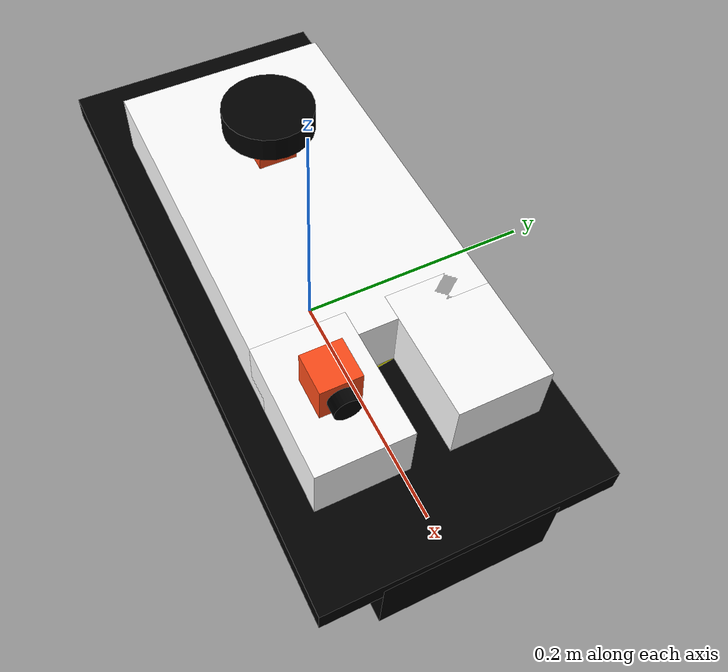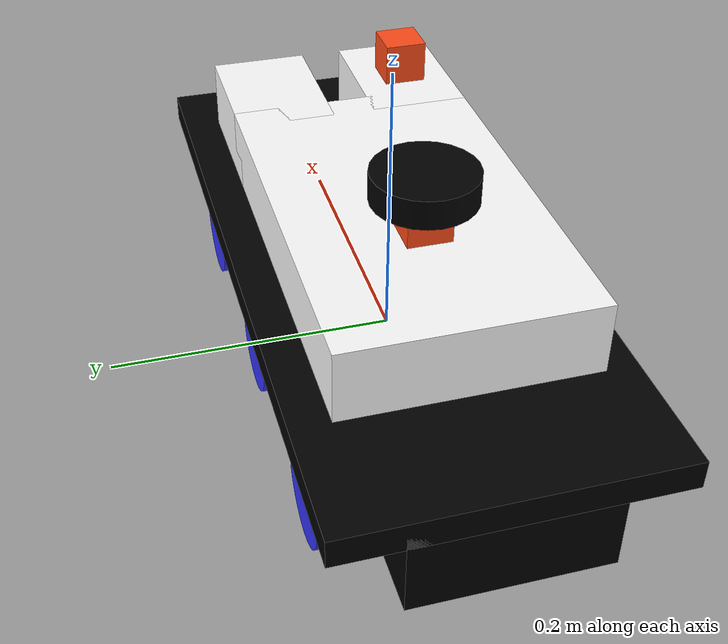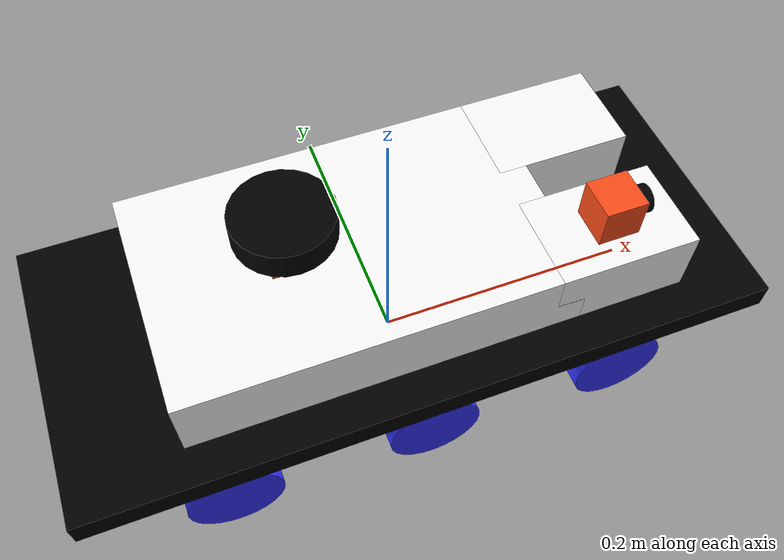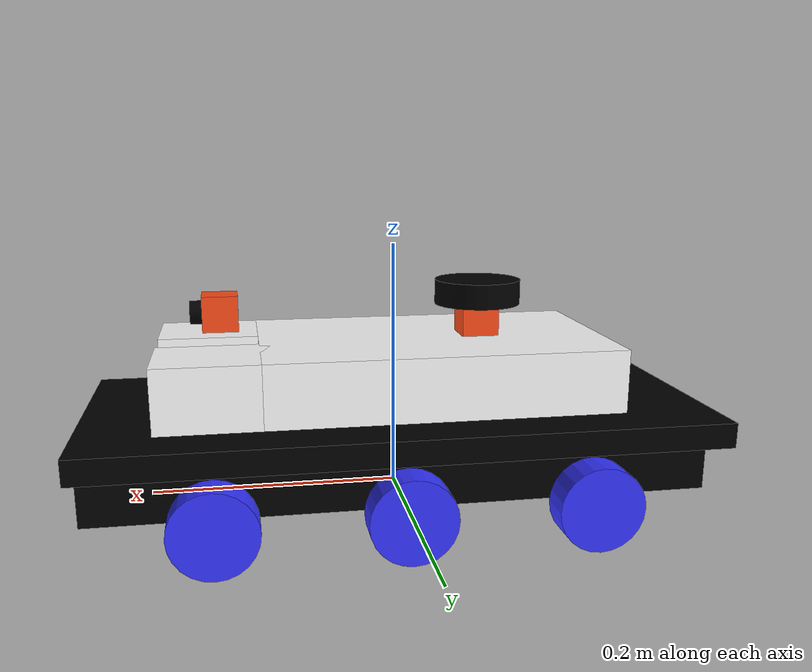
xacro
<?xml version="1.0"?>
<robot xmlns:xacro="http://www.ros.org/wiki/xacro"  name="pulsepusher">

    <xacro:include filename="pulsepusher.xacro" />

    <xacro:include filename="turret.xacro"/>
    <xacro:include filename="camera.xacro" />

    <xacro:include filename="gazebo_control.xacro"/>

    <xacro:include filename="lidar.xacro" />

</robot>

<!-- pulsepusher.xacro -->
<robot xmlns:xacro="http://www.ros.org/wiki/xacro">

    <xacro:include filename="inertial_macros.xacro" />
    <xacro:include filename="pulse_gazebo.xacro" />

    <!-- Farben -->

    <material name="white">
        <color rgba="1 1 1 1" />
    </material>

    <material name="black">
        <color rgba="0 0 0 1" />
    </material>

    <material name="red">
        <color rgba="1 0 0 1" />
    </material>

    <material name="blue">
        <color rgba="0.2 0.2 1 1" />
    </material>

    <material name="yellow">
        <color rgba="1 1 0 1" />
    </material>

    <material name="orange">
        <color rgba="1 0.3 0.1 1" />
    </material>

    <material name="green">
        <color rgba="0.0 1.0 0.0 1.0" />
    </material>

    <!-- BASE LINK -->

    <link name="base_link">

    </link>
    <!-- CHASSIS LINK -->
    <joint name="cassis_joint" type="fixed">
        <parent link="base_link" />
        <child link="chassis" />
        <origin xyz="-0.25 0.0 0.0" />
    </joint>

    <link name="chassis">
        <visual>
            <origin xyz="0.25 0.0 0.03" />
            <geometry>
                <box size="0.5 0.13 0.06" />
            </geometry>
            <material name="black" />
        </visual>
        <collision>
            <origin xyz="0.25 0.0 0.03" />
            <geometry>
                <box size="0.5 0.13 0.06" />
            </geometry>
        </collision>
        <xacro:inertial_box mass="0.3" x="0.5" y="0.13" z="0.06">
            <origion xyz="0.0 0.0 0.0" rpy="0.0 0.0 0.0" />
        </xacro:inertial_box>
    </link>

    <gazebo reference="chassis">
        <material>Gazebo/Black</material>
    </gazebo>

    <joint name="cassis_top_joint" type="fixed">
        <parent link="chassis" />
        <child link="chassis_top" />
        <origin xyz="0.0 0.0 0.0" />
    </joint>

    <link name="chassis_top">
        <visual>
            <origin xyz="0.25 0 0.06" />
            <geometry>
                <box size="0.5 0.22 0.02" />
            </geometry>
            <material name="black" />
        </visual>
        <collision>
            <origin xyz="0.25 0 0.06" />
            <geometry>
                <box size="0.5 0.22 0.02" />
            </geometry>
        </collision>
        <xacro:inertial_box mass="0.1" x="0.5" y="0.22" z="0.02">
            <origion xyz="0.0 0.0 0.0" rpy="0.0 0.0 0.0" />
        </xacro:inertial_box>
    </link>

    <gazebo reference="chassis_top">
        <material>Gazebo/Black</material>
    </gazebo>

    <!-- LEFT WHEEL LINK  Section-->

    <joint name="left_wheel_joint" type="continuous">
        <origin xyz="0.0 0.085 0.0" rpy="-${pi/2} 0.0 0.0" />
        <parent link="base_link" />
        <child link="left_wheel" />
        <axis xyz="0.0 0.0 1.0" />
        <limit lower="0.0" upper="0.0" effort="0.0" velocity="0.0" />
    </joint>

    <link name="left_wheel">
        <visual>
            <geometry>
                <cylinder radius="0.035" length="0.028" />
            </geometry>
            <material name="blue" />
        </visual>
        <collision>
            <geometry>
                <sphere radius="0.035" />
            </geometry>
        </collision>
        <xacro:inertial_cylinder mass="0.1" length="0.028" radius="0.035">
            <origin xyz="0.0 0.0 0.0" rpy="0.0 0.0 0.0" />
        </xacro:inertial_cylinder>
    </link>

    <joint name="left_wheel_joint_f" type="fixed">
        <origin xyz="0.15 0.085 0.0" rpy="-${pi/2} 0.0 0.0" />
        <parent link="base_link" />
        <child link="left_wheel_f" />
    </joint>

    <link name="left_wheel_f">
        <visual>
            <geometry>
                <cylinder radius="0.035" length="0.028" />
            </geometry>
            <material name="blue" />
        </visual>
        <collision>
            <geometry>
                <sphere radius="0.035" />
            </geometry>
        </collision>
        <xacro:inertial_cylinder mass="0.1" length="0.028" radius="0.035">
            <origin xyz="0.0 0.0 0.0" rpy="0.0 0.0 0.0" />
        </xacro:inertial_cylinder>
    </link>

    <joint name="left_wheel_joint_r" type="fixed">
        <origin xyz="-0.15 0.085 0.0" rpy="-${pi/2} 0.0 0.0" />
        <parent link="base_link" />
        <child link="left_wheel_r" />
    </joint>

    <link name="left_wheel_r">
        <visual>
            <geometry>
                <cylinder radius="0.035" length="0.028" />
            </geometry>
            <material name="blue" />
        </visual>
        <collision>
            <geometry>
                <sphere radius="0.035" />
            </geometry>
        </collision>
        <xacro:inertial_cylinder mass="0.1" length="0.028" radius="0.035">
            <origin xyz="0.0 0.0 0.0" rpy="0.0 0.0 0.0" />
        </xacro:inertial_cylinder>
    </link>

    <!-- RIGHT WHEEL LINK -->
    <joint name="right_wheel_joint" type="continuous">
        <origin xyz="0.0 -0.085 0.0" rpy="${pi/2} 0.0 0.0" />
        <parent link="base_link" />
        <child link="right_wheel" />
        <axis xyz="0.0 0.0 -1.0" />
        <limit lower="0.0" upper="0.0" effort="0.0" velocity="0.0" />
    </joint>

    <link name="right_wheel">
        <visual>
            <geometry>
                <cylinder radius="0.035" length="0.028" />
            </geometry>
            <material name="blue" />
        </visual>
        <collision>
            <geometry>
                <sphere radius="0.035" />
            </geometry>
        </collision>
        <xacro:inertial_cylinder mass="0.1" length="0.028" radius="0.035">
            <origin xyz="0.0 0.0 0.0" rpy="0.0 0.0 0.0" />
        </xacro:inertial_cylinder>
    </link>

    <joint name="right_wheel_joint_f" type="fixed">
        <origin xyz="0.15 -0.085 0.0" rpy="${pi/2} 0.0 0.0" />
        <parent link="base_link" />
        <child link="right_wheel_f" />
    </joint>

    <link name="right_wheel_f">
        <visual>
            <geometry>
                <cylinder radius="0.035" length="0.028" />
            </geometry>
            <material name="blue" />
        </visual>
        <collision>
            <geometry>
                <sphere radius="0.035" />
            </geometry>
        </collision>
        <xacro:inertial_cylinder mass="0.1" length="0.028" radius="0.035">
            <origin xyz="0.0 0.0 0.0" rpy="0.0 0.0 0.0" />
        </xacro:inertial_cylinder>
    </link>

    <joint name="right_wheel_joint_r" type="fixed">
        <origin xyz="-0.15 -0.085 0.0" rpy="${pi/2} 0.0 0.0" />
        <parent link="base_link" />
        <child link="right_wheel_r" />
    </joint>

    <link name="right_wheel_r">
        <visual>
            <geometry>
                <cylinder radius="0.035" length="0.028" />
            </geometry>
            <material name="blue" />
        </visual>
        <collision>
            <geometry>
                <sphere radius="0.035" />
            </geometry>
        </collision>
        <xacro:inertial_cylinder mass="0.1" length="0.028" radius="0.035">
            <origin xyz="0.0 0.0 0.0" rpy="0.0 0.0 0.0" />
        </xacro:inertial_cylinder>
    </link>

</robot>

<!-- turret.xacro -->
<robot xmlns:xacro="http://www.ros.org/wiki/xacro">

    <xacro:include filename="inertial_macros.xacro" />

        <!-- Turm Auflage-->
    <joint name="fixirung" type="fixed">
        <origin xyz="0.05 0.0 0.07" rpy="0.0 0.0 0.0" />
        <parent link="base_link" />
        <child link="turret_coil" />
    </joint>

    <link name="turret_coil">
        <visual>
            <geometry>
                <cylinder radius="0.06" length="0.005" />
            </geometry>
            <material name="yellow" />
        </visual>
        <collision>
            <geometry>
                <cylinder radius="0.06" length="0.005" />
            </geometry>
        </collision>
        <xacro:inertial_cylinder mass="0.1" length="0.005" radius="0.06">
            <origin xyz="0.0 0.0 0.0" rpy="0.0 0.0 0.0" />
        </xacro:inertial_cylinder>
    </link>

    <joint name="turret_coil_joint" type="fixed"> <!-- change to moving if - dies ist der joint für den turm -->
        <origin xyz="0.0 0.0 0.005" rpy="0.0 0.0 0.0" />
        <parent link="turret_coil" />
        <child link="turret_coil_" />
    </joint>

    <link name="turret_coil_">
        <visual>
            <geometry>
                <cylinder radius="0.06" length="0.005" />
            </geometry>
            <material name="white" />
        </visual>
        <collision>
            <geometry>
                <cylinder radius="0.06" length="0.005" />
            </geometry>
        </collision>
        <xacro:inertial_cylinder mass="0.1" length="0.005" radius="0.06">
            <origin xyz="0.0 0.0 0.0" rpy="0.0 0.0 0.0" />
        </xacro:inertial_cylinder>
    </link>

        <!-- Turm -->

    <joint name="turm_top_joint" type="fixed">
        <parent link="turret_coil_" />
        <child link="turm_top_" />
        <origin xyz="-0.08 0.0 0.025" />
    </joint>

    <link name="turm_top_">
        <visual>
            <geometry>
                <box size="0.28 0.17 0.05" />
            </geometry>
            <material name="white" />
        </visual>
        <collision>
            <geometry>
                <box size="0.28 0.17 0.05" />
            </geometry>
        </collision>
        <xacro:inertial_box mass="0.1" x="0.28" y="0.17" z="0.05">
            <origion xyz="0.0 0.0 0.0" rpy="0.0 0.0 0.0" />
        </xacro:inertial_box>
    </link>

    <joint name="turm_top_left" type="fixed">
        <parent link="turm_top_" />
        <child link="turm_top_l" />
        <origin xyz="0.17 0.05 0.0" />
    </joint>

    <link name="turm_top_l">
        <visual>
            <geometry>
                <box size="0.1 0.07 0.05" />
            </geometry>
            <material name="white" />
        </visual>
        <collision>
            <geometry>
                <box size="0.1 0.07 0.05" />
            </geometry>
        </collision>
        <xacro:inertial_box mass="0.1" x="0.1" y="0.07" z="0.05">
            <origion xyz="0.0 0.0 0.0" rpy="0.0 0.0 0.0" />
        </xacro:inertial_box>
    </link>

    <joint name="turm_top_right" type="fixed">
        <parent link="turm_top_" />
        <child link="turm_top_r" />
        <origin xyz="0.17 -0.05 0.0" />
    </joint>

    <link name="turm_top_r">
        <visual>
            <geometry>
                <box size="0.1 0.07 0.05" />
            </geometry>
            <material name="white" />
        </visual>
        <collision>
            <geometry>
                <box size="0.1 0.07 0.05" />
            </geometry>
        </collision>
        <xacro:inertial_box mass="0.1" x="0.1" y="0.07" z="0.05">
            <origion xyz="0.0 0.0 0.0" rpy="0.0 0.0 0.0" />
        </xacro:inertial_box>
    </link>

</robot>

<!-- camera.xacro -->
<robot xmlns:xacro="http://www.ros.org/wiki/xacro" >

<!-- CAMERA and Cam Linse-->

    <link name="cam">
        <visual>
            <geometry>
                <box size="0.03 0.03 0.03"/>
            </geometry>
            <material name="orange"/>
        </visual>
        <collision>
            <geometry>
                <box size="0.03 0.03 0.03"/>
            </geometry>
        </collision>
        <xacro:inertial_box mass="0.1" x="0.03" y="0.03" z="0.03">
            <origion xyz="0.0 0.0 0.0" rpy="0.0 0.0 0.0"/>
        </xacro:inertial_box>
    </link>

    <link name="cam_linse">
        <visual>
            <geometry>
                <cylinder radius="0.01" length="0.02"/>
            </geometry>
            <material name="black"/>
        </visual>
        <collision>
            <geometry>
                <cylinder radius="0.01" length="0.02"/>
            </geometry>
        </collision>
        <xacro:inertial_cylinder mass="0.01" length="0.02" radius="0.01">
            <origin xyz="0.0 0.0 0.0" rpy="0.0 0.0 0.0" />
        </xacro:inertial_cylinder>
    </link>

    <link name="camera_link_optical"></link>

    <gazebo reference="cam_linse">
        <material>Gazebo/Black</material>
    </gazebo>

    <joint name="cam_body_joint" type="fixed">
        <origin xyz="0.0 0.0 0.04" rpy="0.0 0.0 0.0"/>
        <parent link="turm_top_r"/>
        <child link="cam"/>
    </joint>

    <joint name="linse_to_cam" type="fixed">
        <origin xyz="0.015 0.0 0.0" rpy="0 ${pi/2} 0.0"/>
        <parent link="cam"/>
        <child link="cam_linse"/>
    </joint>

    <joint name="camera_optical_joint" type="fixed">
        <origin xyz="0 0.0 0.0" rpy="${-pi/2} 0.0 ${-pi/2}"/>
        <parent link="cam"/>
        <child link="camera_link_optical"/>
    </joint>

    <gazebo reference="cam">
        <material>Gazebo/Orange</material>

        <sensor name="camera" type="camera">
            <pose> 0 0 0 0 0 0 </pose>
            <visualize>true</visualize>
            <update_rate>10</update_rate>
            <camera>
                <horizontal_fov>1.089</horizontal_fov>
                <image>
                    <format>R8G8B8</format>
                    <width>640</width>
                    <height>480</height>
                </image>
                <clip>
                    <near>0.05</near>
                    <far>8.0</far>
                </clip>
            </camera>
            <plugin name="camera_controller" filename="libgazebo_ros_camera.so">
                <frame_name>camera_link_optical</frame_name>
            </plugin>
        </sensor>
    </gazebo>

</robot>

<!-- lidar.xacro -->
<robot xmlns:xacro="http://www.ros.org/wiki/xacro" >

        <!-- LIDAR -->
        <link name="lidar_mount">
        <visual>
            <geometry>
                <box size="0.03 0.03 0.03"/>
            </geometry>
            <material name="orange"/>
        </visual>
        <collision>
            <geometry>
                <box size="0.03 0.03 0.03"/>
            </geometry>
        </collision>
        <xacro:inertial_box mass="0.1" x="0.03" y="0.03" z="0.03">
            <origion xyz="0.0 0.0 0.0" rpy="0.0 0.0 0.0"/>
        </xacro:inertial_box>
        </link>

        <joint name="lidar_mount_joint" type="fixed">
        <origin xyz="-0.04 0.0 0.04" rpy="0 0 0"/>
        <parent link="turm_top_"/>
        <child link="lidar_mount"/>
        </joint>

        <link name="laser_frame">
            <visual>
                <geometry>
                    <cylinder radius="0.035" length="0.02"/>
                </geometry>
                <material name="black"/>
            </visual>
            <collision>
                <geometry>
                    <cylinder radius="0.035" length="0.02"/>
                </geometry>
                <material name="black"/>
            </collision>
            <xacro:inertial_cylinder mass="0.1" length="0.02" radius="0.035">
                <origin xyz="0.0 0.0 0.0" rpy="0.0 0.0 0.0"/>
            </xacro:inertial_cylinder>
        </link>

        <gazebo reference="laser_frame">
            <material>Gazebo/Black</material>
        </gazebo>

        <joint name="laser_joint" type="fixed">
            <parent link="lidar_mount"/>
            <child link="laser_frame"/>
            <origin xyz="0.0 0.0 0.02" rpy="0.0 0.0 -1.57"/>
        </joint>

        <gazebo reference="laser_frame">
            <material>Gazebo/Black</material>

            <sensor name="laser" type="ray">
                <pose> 0 0 0 0 0 0 </pose>
                <visualize>true</visualize>
                <update_rate>10</update_rate>
                <ray>
                    <scan>
                        <horizontal>
                            <samples>360</samples>
                            <resolution>1</resolution>
                            <min_angle>0.00</min_angle>
                            <max_angle>3.14</max_angle>
                        </horizontal>
                    </scan>
                    <range>
                        <min>0.3</min>
                        <max>6</max>
                    </range>
                </ray>
                <plugin name="laser_controller" filename="libgazebo_ros_ray_sensor.so">
                    <ros>
                        <argument>--ros-args --remap ~/out:=scan</argument> <!-- - -ros-args - -remap ~/out:=scan -->
                    </ros>
                    <output_type>sensor_msgs/LaserScan</output_type>
                    <frame_name>laser_frame</frame_name>
                </plugin>
            </sensor>
        </gazebo>

</robot>
